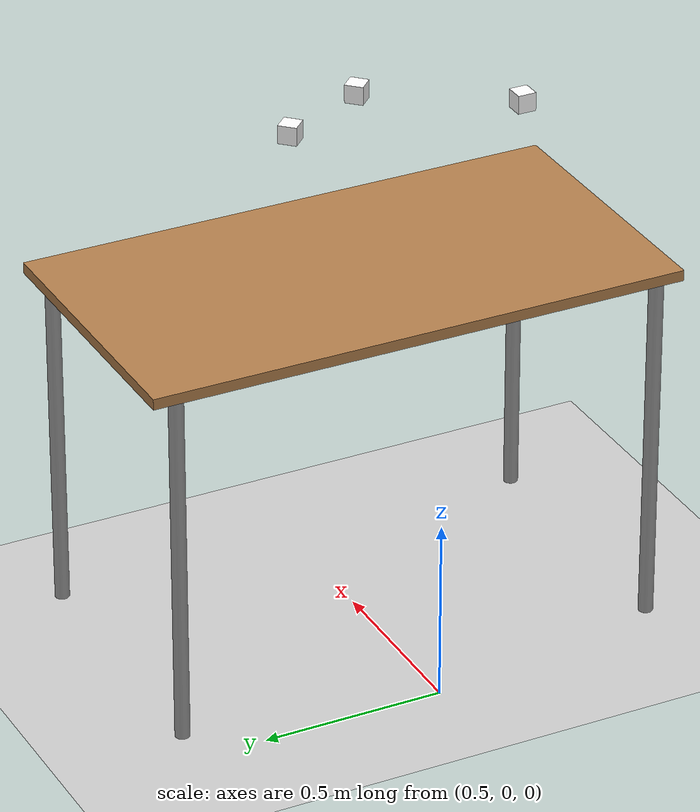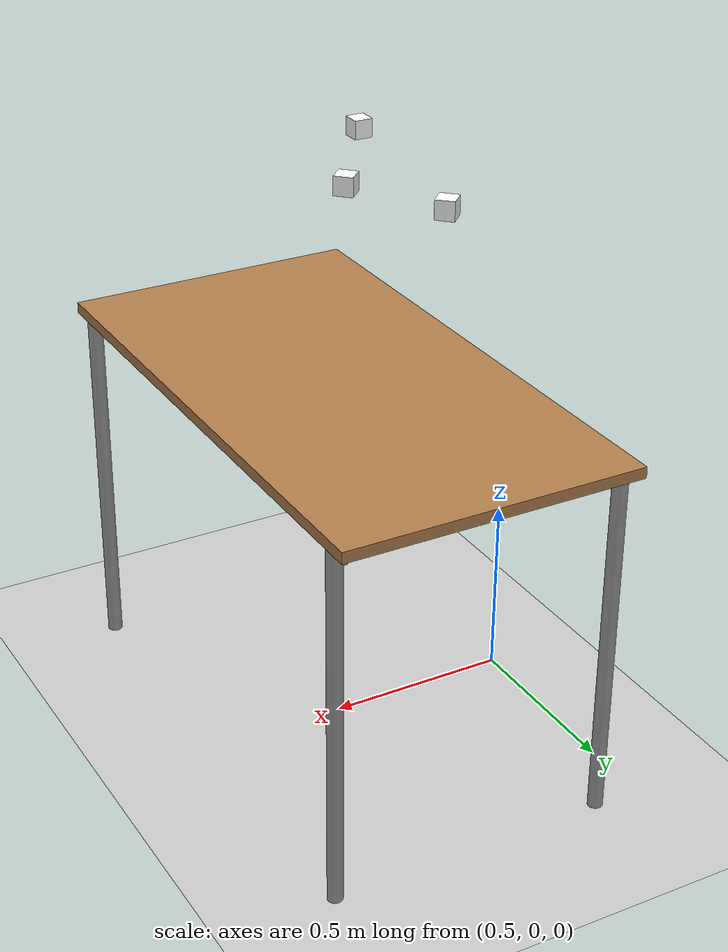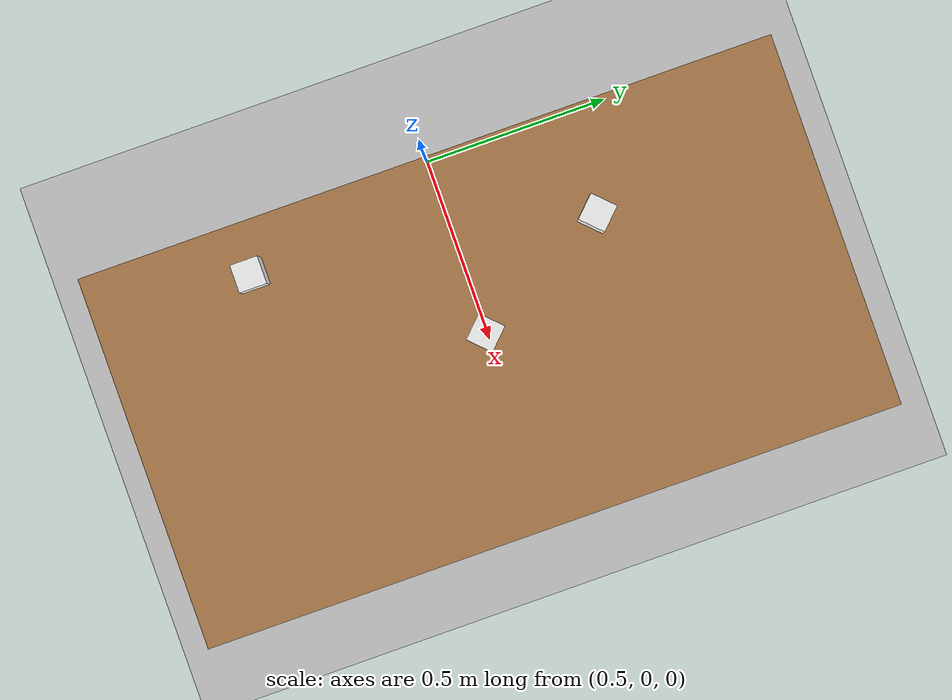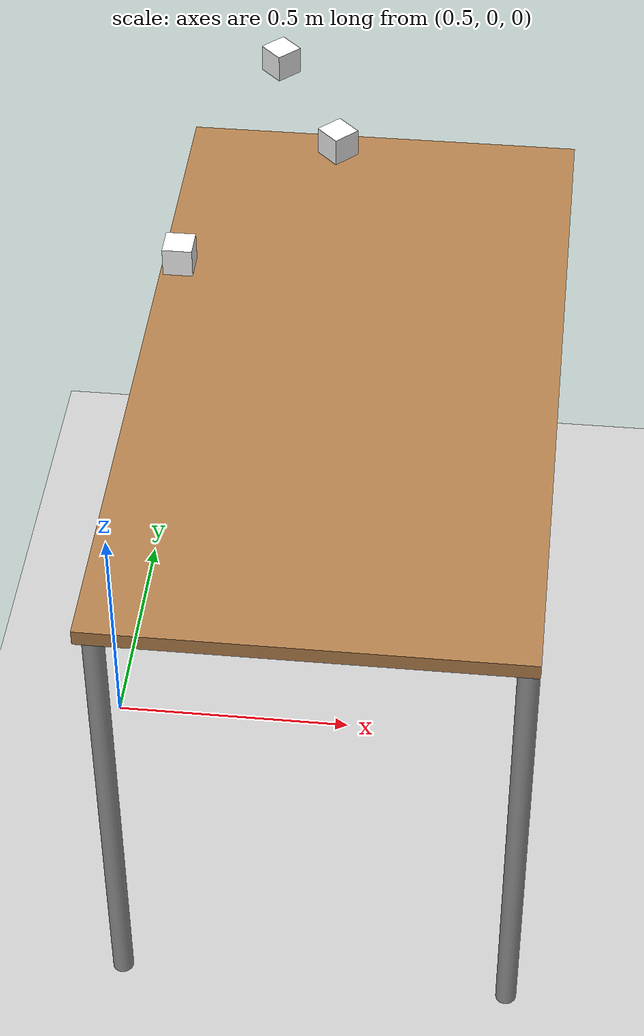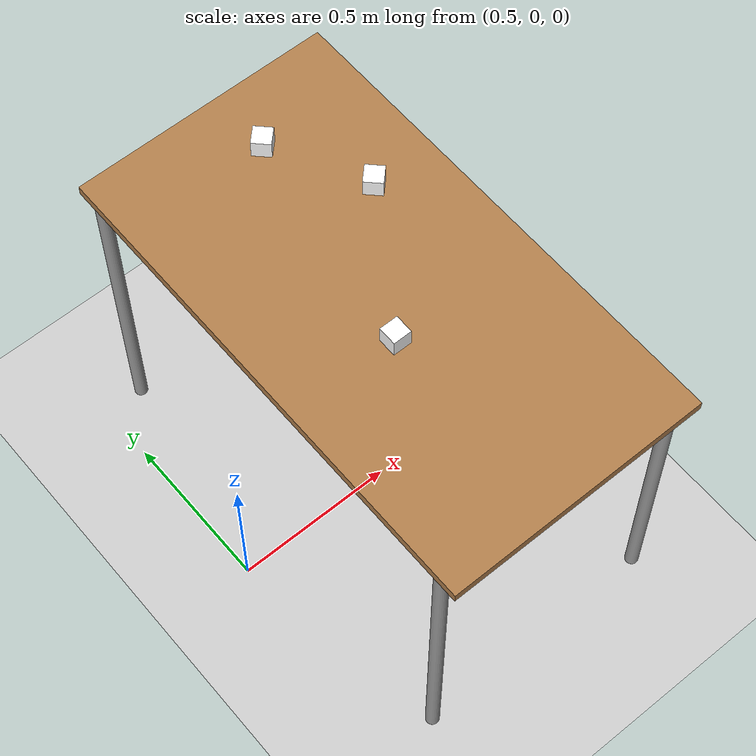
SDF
<?xml version="1.0" ?>
<sdf version="1.6">
  <world name="default">
    <include>
      <uri>model://ground_plane</uri>
    </include>

    <include>
      <uri>model://sun</uri>
    </include>

    <include>
      <uri>model://table</uri>
      <name>table</name>
      <pose>1 0 0 0 0 1.57</pose>
    </include>

    <include>
      <uri>model://wood_cube_5cm</uri>
      <name>target1</name>
      <pose>0.75 -.35 1.5 0 0 0</pose>
    </include>

    <include>
      <uri>model://wood_cube_5cm</uri>
      <name>target3</name>
      <pose>0.85 0.25 1.5 0 0 0.785</pose>
    </include>

    <include>
      <uri>model://wood_cube_5cm</uri>
      <name>target2</name>
      <pose>0.98 0 1.5 0 0 -0.785</pose>
    </include>

    <physics type="ode">
      <real_time_update_rate>1000.0</real_time_update_rate>
    </physics>

    <gravity>
      0.0 0.0 -9.81
    </gravity>

    <gui fullscreen='0'>
      <camera name='user_camera'>
        <pose frame=''>2.69836 -0.874828 2.04939 0 0.399643 2.75619</pose>
        <view_controller>orbit</view_controller>
        <projection_type>perspective</projection_type>
      </camera>
    </gui>

  </world>
</sdf>

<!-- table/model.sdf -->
<sdf version="1.5">
  <model name="table">
    <static>true</static>
    <link name="link">
      <collision name="surface">
        <pose>0 0 1.0 0 0 0</pose>
        <geometry>
          <box>
            <size>1.5 0.8 0.03</size>
          </box>
        </geometry>
        <surface>
          <friction>
            <ode>
              <mu>0.6</mu>
              <mu2>0.6</mu2>
            </ode>
          </friction>
        </surface>
      </collision>
      <visual name="visual1">
        <pose>0 0 1.0 0 0 0</pose>
        <geometry>
          <box>
            <size>1.5 0.8 0.03</size>
          </box>
        </geometry>
        <material>
          <script>
            <uri>model://media/materials/scripts/gazebo.material</uri>
            <name>Gazebo/Wood</name>
          </script>
        </material>
      </visual>
      <collision name="front_left_leg">
        <pose>0.68 0.38 0.5 0 0 0</pose>
        <geometry>
          <cylinder>
            <radius>0.02</radius>
            <length>1.0</length>
          </cylinder>
        </geometry>
      </collision>
      <visual name="front_left_leg">
        <pose>0.68 0.38 0.5 0 0 0</pose>
        <geometry>
          <cylinder>
            <radius>0.02</radius>
            <length>1.0</length>
          </cylinder>
        </geometry>
        <material>
          <script>
            <uri>model://media/materials/scripts/gazebo.material</uri>
            <name>Gazebo/Grey</name>
          </script>
        </material>
      </visual>
      <collision name="front_right_leg">
        <pose>0.68 -0.38 0.5 0 0 0</pose>
        <geometry>
          <cylinder>
            <radius>0.02</radius>
            <length>1.0</length>
          </cylinder>
        </geometry>
      </collision>
      <visual name="front_right_leg">
        <pose>0.68 -0.38 0.5 0 0 0</pose>
        <geometry>
          <cylinder>
            <radius>0.02</radius>
            <length>1.0</length>
          </cylinder>
        </geometry>
        <material>
          <script>
            <uri>model://media/materials/scripts/gazebo.material</uri>
            <name>Gazebo/Grey</name>
          </script>
        </material>
      </visual>
      <collision name="back_right_leg">
        <pose>-0.68 -0.38 0.5 0 0 0</pose>
        <geometry>
          <cylinder>
            <radius>0.02</radius>
            <length>1.0</length>
          </cylinder>
        </geometry>
      </collision>
      <visual name="back_right_leg">
        <pose>-0.68 -0.38 0.5 0 0 0</pose>
        <geometry>
          <cylinder>
            <radius>0.02</radius>
            <length>1.0</length>
          </cylinder>
        </geometry>
        <material>
          <script>
            <uri>model://media/materials/scripts/gazebo.material</uri>
            <name>Gazebo/Grey</name>
          </script>
        </material>
      </visual>
      <collision name="back_left_leg">
        <pose>-0.68 0.38 0.5 0 0 0</pose>
        <geometry>
          <cylinder>
            <radius>0.02</radius>
            <length>1.0</length>
          </cylinder>
        </geometry>
      </collision>
      <visual name="back_left_leg">
        <pose>-0.68 0.38 0.5 0 0 0</pose>
        <geometry>
          <cylinder>
            <radius>0.02</radius>
            <length>1.0</length>
          </cylinder>
        </geometry>
        <material>
          <script>
            <uri>model://media/materials/scripts/gazebo.material</uri>
            <name>Gazebo/Grey</name>
          </script>
        </material>
      </visual>
    </link>
  </model>
</sdf>

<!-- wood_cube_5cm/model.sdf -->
<sdf version="1.5">
  <model name="wood_cube_5cm">
    <link name="link">
      <pose>0 0 0.025 0 0 0</pose>
      <inertial>
        <mass>0.0565</mass>
        <inertia>
          <ixx>2.3541666666666672e-05</ixx>
          <ixy>0</ixy>
          <ixz>0</ixz>
          <iyy>2.3541666666666672e-05</iyy>
          <iyz>0</iyz>
          <izz>2.3541666666666672e-05</izz>
        </inertia>
      </inertial>

      <collision name="collision">
        <geometry>
          <box>
            <size>0.05 0.05 0.05</size>
          </box>
        </geometry>
        <surface>
          <contact>
            <!-- Red Pine coefficients for longitudinal axis of the wood
                 according to:
                 http://www.fpl.fs.fed.us/documnts/fplgtr/fplgtr113/ch04.pdf -->
            <poissons_ratio>0.347</poissons_ratio>
            <elastic_modulus>8.8e+09</elastic_modulus>
            <ode>
              <kp>100000</kp>
              <kd>1</kd>
              <max_vel>1.0</max_vel>
              <min_depth>0.001</min_depth>
            </ode>
          </contact>
          <friction>
            <torsional>
              <coefficient>1.0</coefficient>
              <use_patch_radius>0</use_patch_radius>
              <surface_radius>0.05</surface_radius>
            </torsional>
          </friction>
        </surface>
      </collision>

      <visual name="visual">
        <geometry>
          <box>
            <size>0.05 0.05 0.05</size>
          </box>
        </geometry>
        <material><diffuse>1 1 1 1</diffuse><specular>0.1 0.1 0.1 1</specular></material>
      </visual>

    </link>
  </model>
</sdf>
